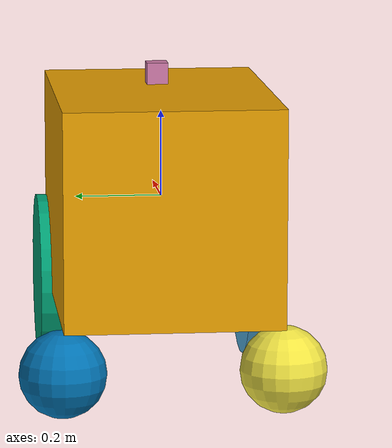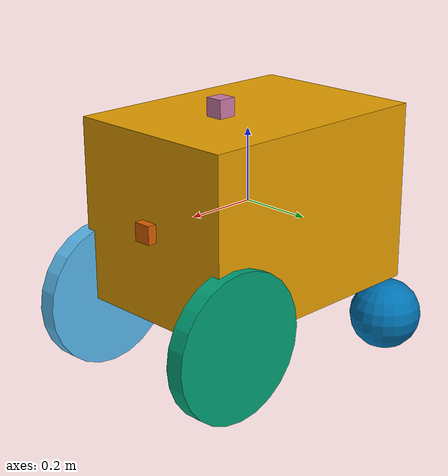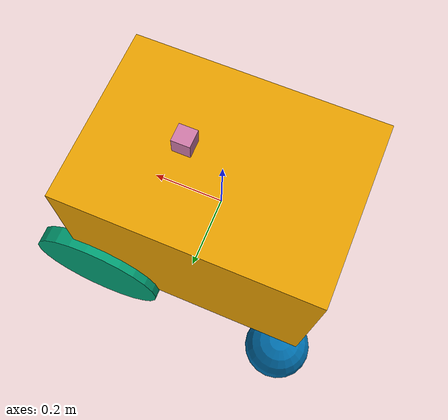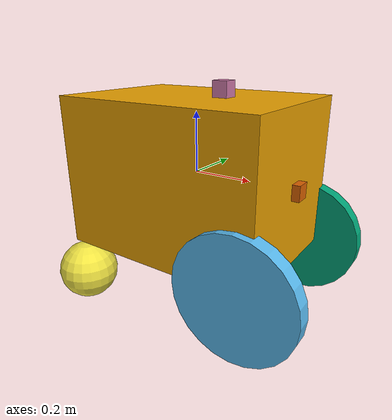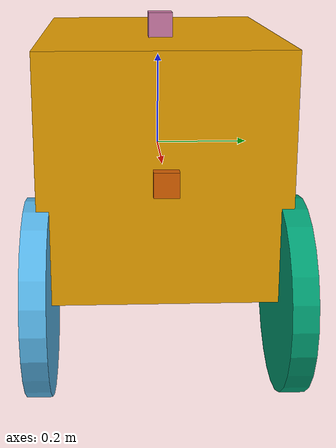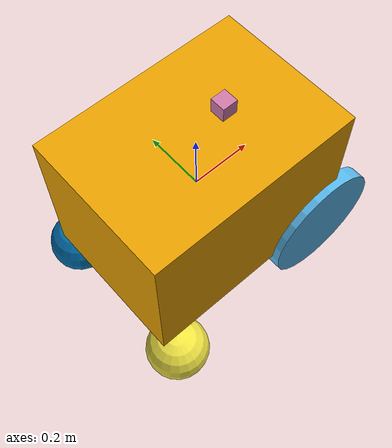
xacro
<?xml version="1.0"?>
<robot name="FloriBot1.0">

  <!-- Base -->
  <link name="base_link">
    <visual>
      <geometry>
        <box size = "0.7 0.5 0.5"/>
      </geometry>
    </visual>
  </link>

  <!-- Wheels -->
  <link name="front_left_wheel_link">
    <visual>
      <origin xyz="0 0 0" rpy="1.5708 0 0"/>
      <geometry>
        <cylinder radius = "0.2" length = "0.05"/>
      </geometry>
    </visual>
  </link>

  <link name="front_right_wheel_link">
    <visual>
      <origin xyz="0 0 0" rpy="1.5708 0 0"/>
      <geometry>
        <cylinder radius = "0.2" length = "0.05"/>
      </geometry>
    </visual>
  </link>

  <link name="rear_left_caster_link">
    <visual>
      <geometry>
        <sphere radius="0.1"/>
      </geometry>
    </visual>
  </link>

  <link name="rear_right_caster_link">
    <visual>
      <geometry>
        <sphere radius="0.1"/>
      </geometry>
    </visual>
  </link>

  <!-- Laser -->
  <link name="laser_frame">
    <visual>
      <geometry>
        <box size = "0.05 0.05 0.05"/>
      </geometry>
    </visual>
  </link>

  <!-- Kamera -->
  <link name="camera_frame">
    <visual>
      <geometry>
        <box size = "0.05 0.05 0.05"/>
      </geometry>
    </visual>
  </link>

  <!-- Laser Joint -->
  <joint name="laser_joint" type="fixed">
    <parent link="base_link"/>
    <child link="laser_frame"/>
    <origin xyz="0.35 0.0 0.0" rpy="0 0 0"/>
  </joint>

  <!-- Kamera Joint-->
  <joint name="camera_joint" type="fixed">
    <parent link="base_link"/>
    <child link="camera_frame"/>
    <origin xyz="0.1 0.0 0.275" rpy="0 0 0"/>
  </joint>

  <!-- Wheel Joints-->
  <joint name="front_left_wheel_joint" type="fixed">
    <axis xyz="0 1 0"/>
    <parent link="base_link"/>
    <child link="front_left_wheel_link"/>
    <origin xyz="0.3 -0.25 -0.25" rpy="0 0 0"/>
  </joint>

  <joint name="front_right_wheel_joint" type="fixed">
    <axis xyz="0 1 0"/>
    <parent link="base_link"/>
    <child link="front_right_wheel_link"/>
    <origin xyz="0.3 0.25 -0.25" rpy="0 0 0"/>
  </joint>

  <joint name="rear_left_caster_joint" type="fixed">
    <parent link="base_link"/>
    <child link="rear_left_caster_link"/>
    <origin xyz="-0.3 -0.25 -0.35"/>
  </joint>

  <joint name="rear_right_caster_joint" type="fixed">
    <parent link="base_link"/>
    <child link="rear_right_caster_link"/>
    <origin xyz="-0.3 0.25 -0.35"/>
  </joint>

</robot>
